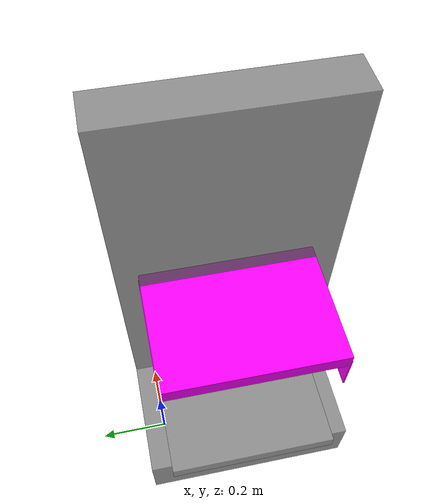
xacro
<?xml version="1.0"?>
<robot name="fridge" xmlns:xacro="http://ros.org/wiki/xacro">

  <xacro:include filename="$(find knowrob_refills)/urdf/dm_shelf_macros.urdf.xacro"/>

  <link name="base_link"/>

  <shelf_1 parent="base_link" name="shelf_1">
    <origin xyz="0.0 -0.2415761 0.08515" rpy="0 0 -1.5756"/>
  </shelf_1>

</robot>

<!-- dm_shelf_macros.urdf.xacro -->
<robot name="dm_shelf_macros" xmlns:xacro="http://ros.org/wiki/xacro">

  <xacro:macro name="shelf_1_level" params="name parent *origin">
    <link name="${name}_link">
      <visual>
        <material name="White">
          <color rgba="1 0 1 1"/>
        </material>
        <geometry>
          <box size="0.480 0.35 0.043"/>
        </geometry>
      </visual>
      <collision>
        <geometry>
          <box size="0.480 0.35 0.043"/>
        </geometry>
      </collision>
    </link>

    <link name="${name}_left_support_link">
      <visual>
        <material name="White">
          <color rgba="1 0 1 1"/>
        </material>
        <geometry>
          <box size="0.004 0.35 0.12"/>
        </geometry>
      </visual>
      <collision>
        <geometry>
          <box size="0.004 0.35 0.12"/>
        </geometry>
      </collision>
    </link>

    <link name="${name}_right_support_link">
      <visual>
        <material name="White">
          <color rgba="1 0 1 1"/>
        </material>
        <geometry>
          <box size="0.004 0.35 0.12"/>
        </geometry>
      </visual>
      <collision>
        <geometry>
          <box size="0.004 0.35 0.12"/>
        </geometry>
      </collision>
    </link>

    <joint type="fixed" name="${name}_joint">
      <xacro:insert_block name="origin"/>
      <parent link="${parent}"/>
      <child link="${name}_link"/>
    </joint>

    <joint type="fixed" name="${name}_right_support_joint">
      <origin xyz="0.24 0 -0.06"/>
      <parent link="${name}_link"/>
      <child link="${name}_right_support_link"/>
    </joint>

    <joint type="fixed" name="${name}_left_support_joint">
      <origin xyz="-0.24 0 -0.06"/>
      <parent link="${name}_link"/>
      <child link="${name}_left_support_link"/>
    </joint>

  </xacro:macro>

  <xacro:macro name="shelf_1" params="*origin parent name">
    <link name="${name}_base">
      <visual>
        <material name="White">
          <color rgba="0.5 0.5 0.5 0.8"/>
        </material>
        <geometry>
          <box size="0.6 0.4 0.15"/>
        </geometry>
      </visual>
      <collision>
        <geometry>
          <box size="0.6 0.4 0.15"/>
        </geometry>
      </collision>
    </link>

    <joint type="fixed" name="${name}_joint">
      <xacro:insert_block name="origin"/>
      <parent link="${parent}"/>
      <child link="${name}_base"/>
    </joint>

    <link name="${name}_back">
      <visual>
        <material name="White">
          <color rgba="0.5 0.5 0.5 0.8"/>
        </material>
        <geometry>
          <box size="0.6 0.12 1"/>
        </geometry>
      </visual>
      <collision>
        <geometry>
          <box size="0.6 0.12 1"/>
        </geometry>
      </collision>
    </link>

    <joint type="fixed" name="${name}_base_back_joint">
      <origin xyz="0 0.2 0.55"/>
      <parent link="${name}_base"/>
      <child link="${name}_back"/>
    </joint>

    <link name="${name}_level_0_link">
      <visual>
        <material name="White">
          <color rgba="0.5 0.5 0.5 0.8"/>
        </material>
        <geometry>
          <box size="0.48 0.35 0.043"/>
        </geometry>
      </visual>
      <collision>
        <geometry>
          <box size="0.48 0.35 0.043"/>
        </geometry>
      </collision>
    </link>

    <joint type="fixed" name="${name}_level_0_joint">
      <origin xyz="0 -0.06 0.10665"/>
      <parent link="${name}_base"/>
      <child link="${name}_level_0_link"/>
    </joint>

     <shelf_1_level name="${name}_level_1" parent="${name}_base" >
      <origin xyz="0 0 0.50965" />
    </shelf_1_level>

  </xacro:macro>

</robot>
